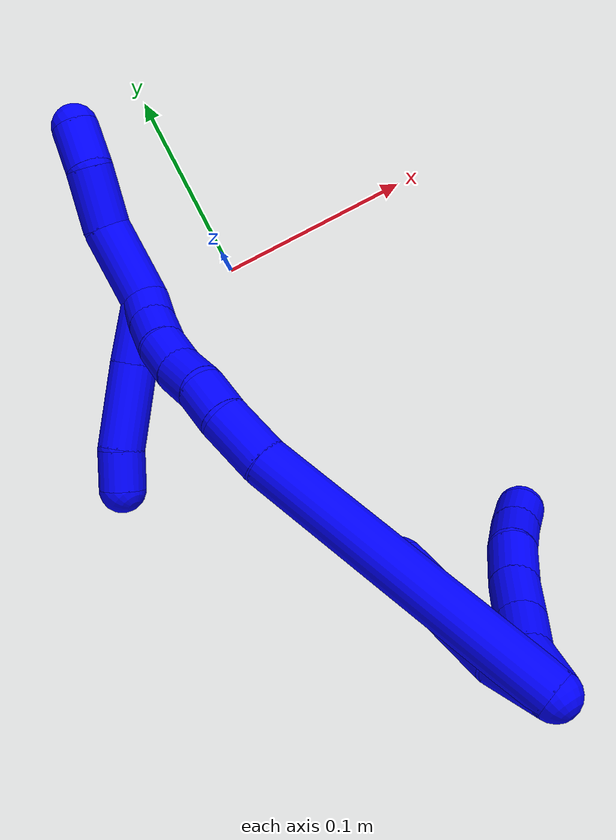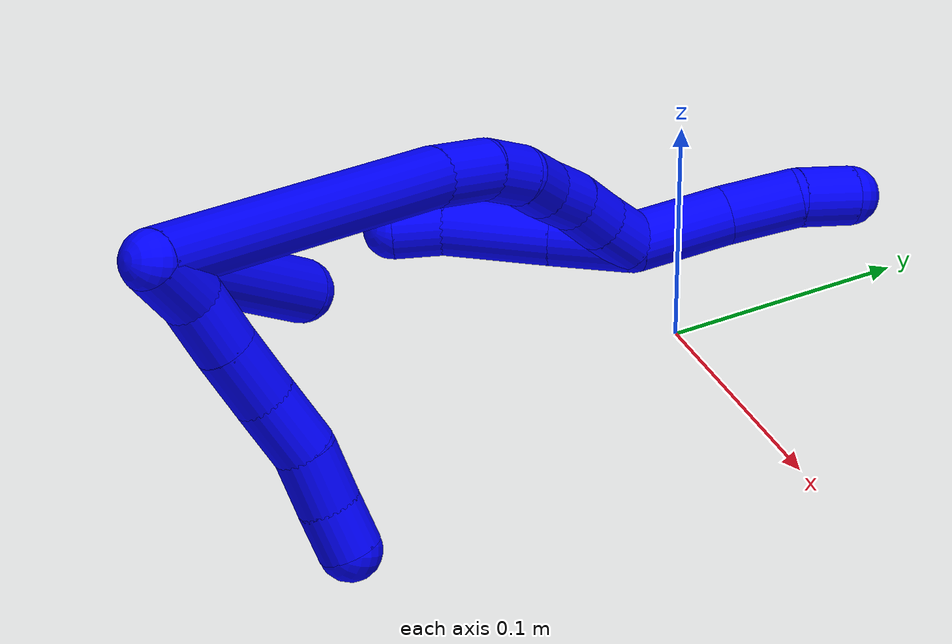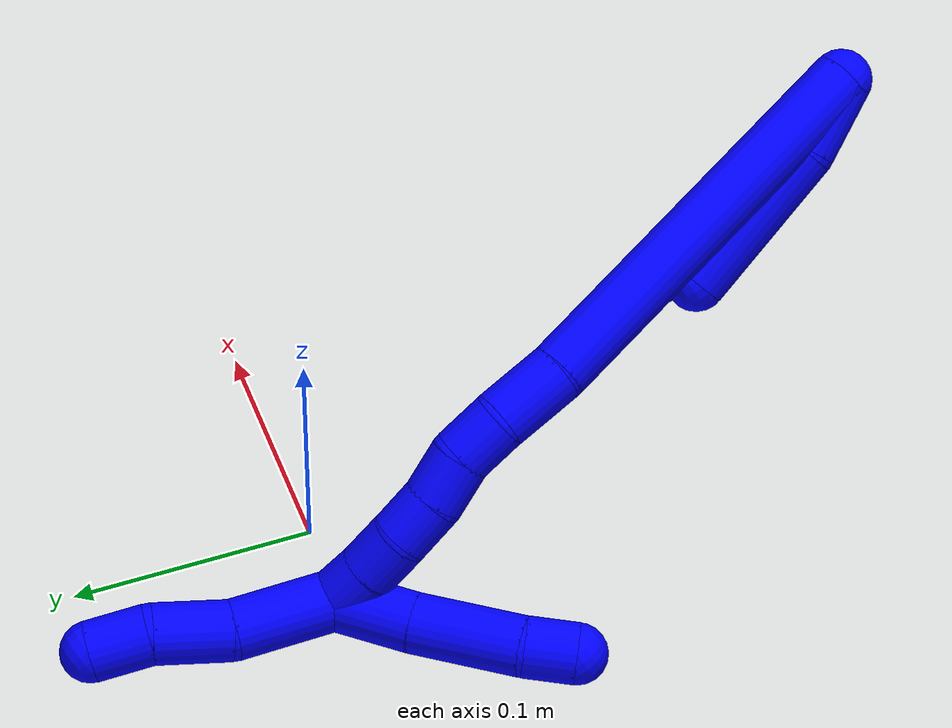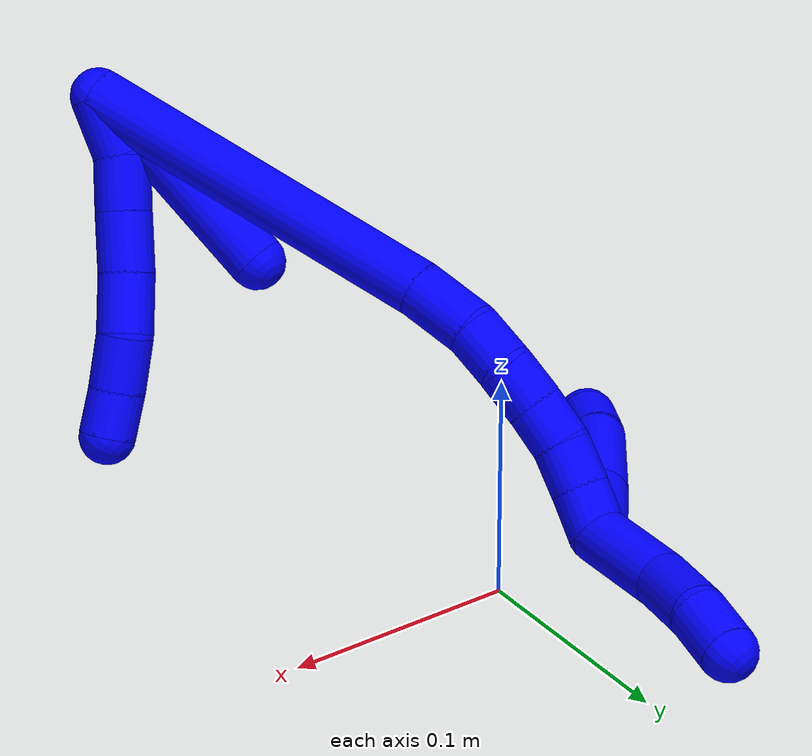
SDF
<sdf version="1.7">
 <world name="default">
  <model name="1">
   <static>0</static>
   <link name="1">
    <collision name="collision-cylinder-e_1_2_8">
     <pose>0.006401 -0.003817 -0.011486 2.82076 0.486462 1.98595</pose>
     <geometry><cylinder><radius>0.0125</radius><length>0.027385</length></cylinder></geometry>
     <surface>
      <friction><ode><mu>1.16</mu><mu2>1.16</mu2><slip1>0</slip1><slip2>0</slip2></ode></friction>
      <contact><ode><kp>1e+06</kp><kd>1</kd><max_vel>0</max_vel><min_depth>0.001</min_depth></ode></contact>
     </surface>
    </collision>
    <visual name="visual-cylinder-e_1_2_8">
     <pose>0.006401 -0.003817 -0.011486 2.82076 0.486462 1.98595</pose>
     <geometry><cylinder><radius>0.0125</radius><length>0.027385</length></cylinder></geometry>
     <material><ambient>0 0 1 1</ambient></material>
    </visual>
    <collision name="collision-cylinder-e_2_8_9">
     <pose>0.021626 -0.009128 -0.031157 2.96105 0.814789 2.72807</pose>
     <geometry><cylinder><radius>0.0125</radius><length>0.024253</length></cylinder></geometry>
     <surface>
      <friction><ode><mu>1.16</mu><mu2>1.16</mu2><slip1>0</slip1><slip2>0</slip2></ode></friction>
      <contact><ode><kp>1e+06</kp><kd>1</kd><max_vel>0</max_vel><min_depth>0.001</min_depth></ode></contact>
     </surface>
    </collision>
    <visual name="visual-cylinder-e_2_8_9">
     <pose>0.021626 -0.009128 -0.031157 2.96105 0.814789 2.72807</pose>
     <geometry><cylinder><radius>0.0125</radius><length>0.024253</length></cylinder></geometry>
     <material><ambient>0 0 1 1</ambient></material>
    </visual>
    <collision name="collision-cylinder-e_3_9_10">
     <pose>0.040015 -0.012068 -0.048737 2.9889 0.788498 2.77793</pose>
     <geometry><cylinder><radius>0.0125</radius><length>0.026974</length></cylinder></geometry>
     <surface>
      <friction><ode><mu>1.16</mu><mu2>1.16</mu2><slip1>0</slip1><slip2>0</slip2></ode></friction>
      <contact><ode><kp>1e+06</kp><kd>1</kd><max_vel>0</max_vel><min_depth>0.001</min_depth></ode></contact>
     </surface>
    </collision>
    <visual name="visual-cylinder-e_3_9_10">
     <pose>0.040015 -0.012068 -0.048737 2.9889 0.788498 2.77793</pose>
     <geometry><cylinder><radius>0.0125</radius><length>0.026974</length></cylinder></geometry>
     <material><ambient>0 0 1 1</ambient></material>
    </visual>
    <collision name="collision-cylinder-e_4_10_11">
     <pose>0.059469 -0.013922 -0.067099 3.09611 0.833801 3.03897</pose>
     <geometry><cylinder><radius>0.0125</radius><length>0.026707</length></cylinder></geometry>
     <surface>
      <friction><ode><mu>1.16</mu><mu2>1.16</mu2><slip1>0</slip1><slip2>0</slip2></ode></friction>
      <contact><ode><kp>1e+06</kp><kd>1</kd><max_vel>0</max_vel><min_depth>0.001</min_depth></ode></contact>
     </surface>
    </collision>
    <visual name="visual-cylinder-e_4_10_11">
     <pose>0.059469 -0.013922 -0.067099 3.09611 0.833801 3.03897</pose>
     <geometry><cylinder><radius>0.0125</radius><length>0.026707</length></cylinder></geometry>
     <material><ambient>0 0 1 1</ambient></material>
    </visual>
    <collision name="collision-cylinder-e_5_11_12">
     <pose>0.079686 -0.015956 -0.082257 2.88482 1.01583 2.6858</pose>
     <geometry><cylinder><radius>0.0125</radius><length>0.024305</length></cylinder></geometry>
     <surface>
      <friction><ode><mu>1.16</mu><mu2>1.16</mu2><slip1>0</slip1><slip2>0</slip2></ode></friction>
      <contact><ode><kp>1e+06</kp><kd>1</kd><max_vel>0</max_vel><min_depth>0.001</min_depth></ode></contact>
     </surface>
    </collision>
    <visual name="visual-cylinder-e_5_11_12">
     <pose>0.079686 -0.015956 -0.082257 2.88482 1.01583 2.6858</pose>
     <geometry><cylinder><radius>0.0125</radius><length>0.024305</length></cylinder></geometry>
     <material><ambient>0 0 1 1</ambient></material>
    </visual>
    <collision name="collision-cylinder-e_6_12_6">
     <pose>0.098894 -0.018218 -0.093406 3.01402 1.05827 2.92399</pose>
     <geometry><cylinder><radius>0.0125</radius><length>0.020375</length></cylinder></geometry>
     <surface>
      <friction><ode><mu>1.16</mu><mu2>1.16</mu2><slip1>0</slip1><slip2>0</slip2></ode></friction>
      <contact><ode><kp>1e+06</kp><kd>1</kd><max_vel>0</max_vel><min_depth>0.001</min_depth></ode></contact>
     </surface>
    </collision>
    <visual name="visual-cylinder-e_6_12_6">
     <pose>0.098894 -0.018218 -0.093406 3.01402 1.05827 2.92399</pose>
     <geometry><cylinder><radius>0.0125</radius><length>0.020375</length></cylinder></geometry>
     <material><ambient>0 0 1 1</ambient></material>
    </visual>
    <collision name="collision-cylinder-e_1_2_13">
     <pose>0.000329 -0.006938 -0.014336 2.69086 0.020668 0.090092</pose>
     <geometry><cylinder><radius>0.0125</radius><length>0.031861</length></cylinder></geometry>
     <surface>
      <friction><ode><mu>1.16</mu><mu2>1.16</mu2><slip1>0</slip1><slip2>0</slip2></ode></friction>
      <contact><ode><kp>1e+06</kp><kd>1</kd><max_vel>0</max_vel><min_depth>0.001</min_depth></ode></contact>
     </surface>
    </collision>
    <visual name="visual-cylinder-e_1_2_13">
     <pose>0.000329 -0.006938 -0.014336 2.69086 0.020668 0.090092</pose>
     <geometry><cylinder><radius>0.0125</radius><length>0.031861</length></cylinder></geometry>
     <material><ambient>0 0 1 1</ambient></material>
    </visual>
    <collision name="collision-cylinder-e_2_13_5">
     <pose>0.004341 -0.021953 -0.061566 2.90081 0.10831 0.842511</pose>
     <geometry><cylinder><radius>0.0125</radius><length>0.068139</length></cylinder></geometry>
     <surface>
      <friction><ode><mu>1.16</mu><mu2>1.16</mu2><slip1>0</slip1><slip2>0</slip2></ode></friction>
      <contact><ode><kp>1e+06</kp><kd>1</kd><max_vel>0</max_vel><min_depth>0.001</min_depth></ode></contact>
     </surface>
    </collision>
    <visual name="visual-cylinder-e_2_13_5">
     <pose>0.004341 -0.021953 -0.061566 2.90081 0.10831 0.842511</pose>
     <geometry><cylinder><radius>0.0125</radius><length>0.068139</length></cylinder></geometry>
     <material><ambient>0 0 1 1</ambient></material>
    </visual>
    <collision name="collision-cylinder-e_1_2_14">
     <pose>-0.01766 -0.013155 -0.081081 2.98074 -0.21177 -1.84396</pose>
     <geometry><cylinder><radius>0.0125</radius><length>0.168036</length></cylinder></geometry>
     <surface>
      <friction><ode><mu>1.16</mu><mu2>1.16</mu2><slip1>0</slip1><slip2>0</slip2></ode></friction>
      <contact><ode><kp>1e+06</kp><kd>1</kd><max_vel>0</max_vel><min_depth>0.001</min_depth></ode></contact>
     </surface>
    </collision>
    <visual name="visual-cylinder-e_1_2_14">
     <pose>-0.01766 -0.013155 -0.081081 2.98074 -0.21177 -1.84396</pose>
     <geometry><cylinder><radius>0.0125</radius><length>0.168036</length></cylinder></geometry>
     <material><ambient>0 0 1 1</ambient></material>
    </visual>
    <collision name="collision-cylinder-e_2_14_15">
     <pose>-0.037207 -0.027156 -0.177069 3.08499 -0.125726 -2.29638</pose>
     <geometry><cylinder><radius>0.0125</radius><length>0.0301</length></cylinder></geometry>
     <surface>
      <friction><ode><mu>1.16</mu><mu2>1.16</mu2><slip1>0</slip1><slip2>0</slip2></ode></friction>
      <contact><ode><kp>1e+06</kp><kd>1</kd><max_vel>0</max_vel><min_depth>0.001</min_depth></ode></contact>
     </surface>
    </collision>
    <visual name="visual-cylinder-e_2_14_15">
     <pose>-0.037207 -0.027156 -0.177069 3.08499 -0.125726 -2.29638</pose>
     <geometry><cylinder><radius>0.0125</radius><length>0.0301</length></cylinder></geometry>
     <material><ambient>0 0 1 1</ambient></material>
    </visual>
    <collision name="collision-cylinder-e_3_15_16">
     <pose>-0.038079 -0.029164 -0.202348 3.02982 0.096962 1.42888</pose>
     <geometry><cylinder><radius>0.0125</radius><length>0.020971</length></cylinder></geometry>
     <surface>
      <friction><ode><mu>1.16</mu><mu2>1.16</mu2><slip1>0</slip1><slip2>0</slip2></ode></friction>
      <contact><ode><kp>1e+06</kp><kd>1</kd><max_vel>0</max_vel><min_depth>0.001</min_depth></ode></contact>
     </surface>
    </collision>
    <visual name="visual-cylinder-e_3_15_16">
     <pose>-0.038079 -0.029164 -0.202348 3.02982 0.096962 1.42888</pose>
     <geometry><cylinder><radius>0.0125</radius><length>0.020971</length></cylinder></geometry>
     <material><ambient>0 0 1 1</ambient></material>
    </visual>
    <collision name="collision-cylinder-e_4_16_17">
     <pose>-0.034979 -0.034067 -0.2222 2.76599 0.201779 0.978916</pose>
     <geometry><cylinder><radius>0.0125</radius><length>0.020804</length></cylinder></geometry>
     <surface>
      <friction><ode><mu>1.16</mu><mu2>1.16</mu2><slip1>0</slip1><slip2>0</slip2></ode></friction>
      <contact><ode><kp>1e+06</kp><kd>1</kd><max_vel>0</max_vel><min_depth>0.001</min_depth></ode></contact>
     </surface>
    </collision>
    <visual name="visual-cylinder-e_4_16_17">
     <pose>-0.034979 -0.034067 -0.2222 2.76599 0.201779 0.978916</pose>
     <geometry><cylinder><radius>0.0125</radius><length>0.020804</length></cylinder></geometry>
     <material><ambient>0 0 1 1</ambient></material>
    </visual>
    <collision name="collision-cylinder-e_5_17_18">
     <pose>-0.030638 -0.039689 -0.24126 2.94743 0.227166 1.72827</pose>
     <geometry><cylinder><radius>0.0125</radius><length>0.02004</length></cylinder></geometry>
     <surface>
      <friction><ode><mu>1.16</mu><mu2>1.16</mu2><slip1>0</slip1><slip2>0</slip2></ode></friction>
      <contact><ode><kp>1e+06</kp><kd>1</kd><max_vel>0</max_vel><min_depth>0.001</min_depth></ode></contact>
     </surface>
    </collision>
    <visual name="visual-cylinder-e_5_17_18">
     <pose>-0.030638 -0.039689 -0.24126 2.94743 0.227166 1.72827</pose>
     <geometry><cylinder><radius>0.0125</radius><length>0.02004</length></cylinder></geometry>
     <material><ambient>0 0 1 1</ambient></material>
    </visual>
    <collision name="collision-cylinder-e_6_18_19">
     <pose>-0.024282 -0.043114 -0.259847 2.97209 0.421593 2.38571</pose>
     <geometry><cylinder><radius>0.0125</radius><length>0.020031</length></cylinder></geometry>
     <surface>
      <friction><ode><mu>1.16</mu><mu2>1.16</mu2><slip1>0</slip1><slip2>0</slip2></ode></friction>
      <contact><ode><kp>1e+06</kp><kd>1</kd><max_vel>0</max_vel><min_depth>0.001</min_depth></ode></contact>
     </surface>
    </collision>
    <visual name="visual-cylinder-e_6_18_19">
     <pose>-0.024282 -0.043114 -0.259847 2.97209 0.421593 2.38571</pose>
     <geometry><cylinder><radius>0.0125</radius><length>0.020031</length></cylinder></geometry>
     <material><ambient>0 0 1 1</ambient></material>
    </visual>
    <collision name="collision-cylinder-e_7_19_1">
     <pose>-0.015992 -0.045414 -0.27791 3.05804 0.43222 2.76532</pose>
     <geometry><cylinder><radius>0.0125</radius><length>0.020016</length></cylinder></geometry>
     <surface>
      <friction><ode><mu>1.16</mu><mu2>1.16</mu2><slip1>0</slip1><slip2>0</slip2></ode></friction>
      <contact><ode><kp>1e+06</kp><kd>1</kd><max_vel>0</max_vel><min_depth>0.001</min_depth></ode></contact>
     </surface>
    </collision>
    <visual name="visual-cylinder-e_7_19_1">
     <pose>-0.015992 -0.045414 -0.27791 3.05804 0.43222 2.76532</pose>
     <geometry><cylinder><radius>0.0125</radius><length>0.020016</length></cylinder></geometry>
     <material><ambient>0 0 1 1</ambient></material>
    </visual>
    <collision name="collision-cylinder-e_1_1_20">
     <pose>-0.014886 -0.059277 -0.276838 0.912817 -0.184281 -0.090674</pose>
     <geometry><cylinder><radius>0.0125</radius><length>0.033695</length></cylinder></geometry>
     <surface>
      <friction><ode><mu>1.16</mu><mu2>1.16</mu2><slip1>0</slip1><slip2>0</slip2></ode></friction>
      <contact><ode><kp>1e+06</kp><kd>1</kd><max_vel>0</max_vel><min_depth>0.001</min_depth></ode></contact>
     </surface>
    </collision>
    <visual name="visual-cylinder-e_1_1_20">
     <pose>-0.014886 -0.059277 -0.276838 0.912817 -0.184281 -0.090674</pose>
     <geometry><cylinder><radius>0.0125</radius><length>0.033695</length></cylinder></geometry>
     <material><ambient>0 0 1 1</ambient></material>
    </visual>
    <collision name="collision-cylinder-e_2_20_21">
     <pose>-0.022323 -0.088946 -0.251975 0.843772 -0.193711 -0.087162</pose>
     <geometry><cylinder><radius>0.0125</radius><length>0.045186</length></cylinder></geometry>
     <surface>
      <friction><ode><mu>1.16</mu><mu2>1.16</mu2><slip1>0</slip1><slip2>0</slip2></ode></friction>
      <contact><ode><kp>1e+06</kp><kd>1</kd><max_vel>0</max_vel><min_depth>0.001</min_depth></ode></contact>
     </surface>
    </collision>
    <visual name="visual-cylinder-e_2_20_21">
     <pose>-0.022323 -0.088946 -0.251975 0.843772 -0.193711 -0.087162</pose>
     <geometry><cylinder><radius>0.0125</radius><length>0.045186</length></cylinder></geometry>
     <material><ambient>0 0 1 1</ambient></material>
    </visual>
    <collision name="collision-cylinder-e_3_21_4">
     <pose>-0.026817 -0.112854 -0.229652 0.768985 -0.013729 -0.005555</pose>
     <geometry><cylinder><radius>0.0125</radius><length>0.021119</length></cylinder></geometry>
     <surface>
      <friction><ode><mu>1.16</mu><mu2>1.16</mu2><slip1>0</slip1><slip2>0</slip2></ode></friction>
      <contact><ode><kp>1e+06</kp><kd>1</kd><max_vel>0</max_vel><min_depth>0.001</min_depth></ode></contact>
     </surface>
    </collision>
    <visual name="visual-cylinder-e_3_21_4">
     <pose>-0.026817 -0.112854 -0.229652 0.768985 -0.013729 -0.005555</pose>
     <geometry><cylinder><radius>0.0125</radius><length>0.021119</length></cylinder></geometry>
     <material><ambient>0 0 1 1</ambient></material>
    </visual>
    <collision name="collision-cylinder-e_1_1_22">
     <pose>-0.016473 -0.038896 -0.306718 -2.78863 -0.218502 1.10283</pose>
     <geometry><cylinder><radius>0.0125</radius><length>0.043123</length></cylinder></geometry>
     <surface>
      <friction><ode><mu>1.16</mu><mu2>1.16</mu2><slip1>0</slip1><slip2>0</slip2></ode></friction>
      <contact><ode><kp>1e+06</kp><kd>1</kd><max_vel>0</max_vel><min_depth>0.001</min_depth></ode></contact>
     </surface>
    </collision>
    <visual name="visual-cylinder-e_1_1_22">
     <pose>-0.016473 -0.038896 -0.306718 -2.78863 -0.218502 1.10283</pose>
     <geometry><cylinder><radius>0.0125</radius><length>0.043123</length></cylinder></geometry>
     <material><ambient>0 0 1 1</ambient></material>
    </visual>
    <collision name="collision-cylinder-e_2_22_23">
     <pose>-0.023806 -0.022644 -0.33958 -2.54125 -0.16584 0.524648</pose>
     <geometry><cylinder><radius>0.0125</radius><length>0.032222</length></cylinder></geometry>
     <surface>
      <friction><ode><mu>1.16</mu><mu2>1.16</mu2><slip1>0</slip1><slip2>0</slip2></ode></friction>
      <contact><ode><kp>1e+06</kp><kd>1</kd><max_vel>0</max_vel><min_depth>0.001</min_depth></ode></contact>
     </surface>
    </collision>
    <visual name="visual-cylinder-e_2_22_23">
     <pose>-0.023806 -0.022644 -0.33958 -2.54125 -0.16584 0.524648</pose>
     <geometry><cylinder><radius>0.0125</radius><length>0.032222</length></cylinder></geometry>
     <material><ambient>0 0 1 1</ambient></material>
    </visual>
    <collision name="collision-cylinder-e_3_23_3">
     <pose>-0.026404 -0.009375 -0.364248 -2.786 0.004996 -0.027804</pose>
     <geometry><cylinder><radius>0.0125</radius><length>0.024655</length></cylinder></geometry>
     <surface>
      <friction><ode><mu>1.16</mu><mu2>1.16</mu2><slip1>0</slip1><slip2>0</slip2></ode></friction>
      <contact><ode><kp>1e+06</kp><kd>1</kd><max_vel>0</max_vel><min_depth>0.001</min_depth></ode></contact>
     </surface>
    </collision>
    <visual name="visual-cylinder-e_3_23_3">
     <pose>-0.026404 -0.009375 -0.364248 -2.786 0.004996 -0.027804</pose>
     <geometry><cylinder><radius>0.0125</radius><length>0.024655</length></cylinder></geometry>
     <material><ambient>0 0 1 1</ambient></material>
    </visual>
    <collision name="collision-sphere-3">
     <pose>-0.026343 -0.005084 -0.375804 0 -0 0</pose>
     <geometry><sphere><radius>0.0125</radius></sphere></geometry>
     <surface>
      <friction><ode><mu>1.16</mu><mu2>1.16</mu2><slip1>0</slip1><slip2>0</slip2></ode></friction>
      <contact><ode><kp>1e+06</kp><kd>1</kd><max_vel>0</max_vel><min_depth>0.001</min_depth></ode></contact>
     </surface>
    </collision>
    <visual name="visual-sphere-3">
     <pose>-0.026343 -0.005084 -0.375804 0 -0 0</pose>
     <geometry><sphere><radius>0.0125</radius></sphere></geometry>
     <material><ambient>0 0 1 1</ambient></material>
    </visual>
    <collision name="collision-sphere-23">
     <pose>-0.026466 -0.013667 -0.352692 0 -0 0</pose>
     <geometry><sphere><radius>0.0125</radius></sphere></geometry>
     <surface>
      <friction><ode><mu>1.16</mu><mu2>1.16</mu2><slip1>0</slip1><slip2>0</slip2></ode></friction>
      <contact><ode><kp>1e+06</kp><kd>1</kd><max_vel>0</max_vel><min_depth>0.001</min_depth></ode></contact>
     </surface>
    </collision>
    <visual name="visual-sphere-23">
     <pose>-0.026466 -0.013667 -0.352692 0 -0 0</pose>
     <geometry><sphere><radius>0.0125</radius></sphere></geometry>
     <material><ambient>0 0 1 1</ambient></material>
    </visual>
    <collision name="collision-sphere-22">
     <pose>-0.021147 -0.03162 -0.326469 0 -0 0</pose>
     <geometry><sphere><radius>0.0125</radius></sphere></geometry>
     <surface>
      <friction><ode><mu>1.16</mu><mu2>1.16</mu2><slip1>0</slip1><slip2>0</slip2></ode></friction>
      <contact><ode><kp>1e+06</kp><kd>1</kd><max_vel>0</max_vel><min_depth>0.001</min_depth></ode></contact>
     </surface>
    </collision>
    <visual name="visual-sphere-22">
     <pose>-0.021147 -0.03162 -0.326469 0 -0 0</pose>
     <geometry><sphere><radius>0.0125</radius></sphere></geometry>
     <material><ambient>0 0 1 1</ambient></material>
    </visual>
    <collision name="collision-sphere-4">
     <pose>-0.026962 -0.120196 -0.222064 0 -0 0</pose>
     <geometry><sphere><radius>0.0125</radius></sphere></geometry>
     <surface>
      <friction><ode><mu>1.16</mu><mu2>1.16</mu2><slip1>0</slip1><slip2>0</slip2></ode></friction>
      <contact><ode><kp>1e+06</kp><kd>1</kd><max_vel>0</max_vel><min_depth>0.001</min_depth></ode></contact>
     </surface>
    </collision>
    <visual name="visual-sphere-4">
     <pose>-0.026962 -0.120196 -0.222064 0 -0 0</pose>
     <geometry><sphere><radius>0.0125</radius></sphere></geometry>
     <material><ambient>0 0 1 1</ambient></material>
    </visual>
    <collision name="collision-sphere-21">
     <pose>-0.026672 -0.105511 -0.237239 0 -0 0</pose>
     <geometry><sphere><radius>0.0125</radius></sphere></geometry>
     <surface>
      <friction><ode><mu>1.16</mu><mu2>1.16</mu2><slip1>0</slip1><slip2>0</slip2></ode></friction>
      <contact><ode><kp>1e+06</kp><kd>1</kd><max_vel>0</max_vel><min_depth>0.001</min_depth></ode></contact>
     </surface>
    </collision>
    <visual name="visual-sphere-21">
     <pose>-0.026672 -0.105511 -0.237239 0 -0 0</pose>
     <geometry><sphere><radius>0.0125</radius></sphere></geometry>
     <material><ambient>0 0 1 1</ambient></material>
    </visual>
    <collision name="collision-sphere-20">
     <pose>-0.017974 -0.072382 -0.26671 0 -0 0</pose>
     <geometry><sphere><radius>0.0125</radius></sphere></geometry>
     <surface>
      <friction><ode><mu>1.16</mu><mu2>1.16</mu2><slip1>0</slip1><slip2>0</slip2></ode></friction>
      <contact><ode><kp>1e+06</kp><kd>1</kd><max_vel>0</max_vel><min_depth>0.001</min_depth></ode></contact>
     </surface>
    </collision>
    <visual name="visual-sphere-20">
     <pose>-0.017974 -0.072382 -0.26671 0 -0 0</pose>
     <geometry><sphere><radius>0.0125</radius></sphere></geometry>
     <material><ambient>0 0 1 1</ambient></material>
    </visual>
    <collision name="collision-sphere-12">
     <pose>0.090015 -0.017582 -0.088451 0 -0 0</pose>
     <geometry><sphere><radius>0.0125</radius></sphere></geometry>
     <surface>
      <friction><ode><mu>1.16</mu><mu2>1.16</mu2><slip1>0</slip1><slip2>0</slip2></ode></friction>
      <contact><ode><kp>1e+06</kp><kd>1</kd><max_vel>0</max_vel><min_depth>0.001</min_depth></ode></contact>
     </surface>
    </collision>
    <visual name="visual-sphere-12">
     <pose>0.090015 -0.017582 -0.088451 0 -0 0</pose>
     <geometry><sphere><radius>0.0125</radius></sphere></geometry>
     <material><ambient>0 0 1 1</ambient></material>
    </visual>
    <collision name="collision-sphere-11">
     <pose>0.069358 -0.01433 -0.076064 0 -0 0</pose>
     <geometry><sphere><radius>0.0125</radius></sphere></geometry>
     <surface>
      <friction><ode><mu>1.16</mu><mu2>1.16</mu2><slip1>0</slip1><slip2>0</slip2></ode></friction>
      <contact><ode><kp>1e+06</kp><kd>1</kd><max_vel>0</max_vel><min_depth>0.001</min_depth></ode></contact>
     </surface>
    </collision>
    <visual name="visual-sphere-11">
     <pose>0.069358 -0.01433 -0.076064 0 -0 0</pose>
     <geometry><sphere><radius>0.0125</radius></sphere></geometry>
     <material><ambient>0 0 1 1</ambient></material>
    </visual>
    <collision name="collision-sphere-10">
     <pose>0.049581 -0.013514 -0.058134 0 -0 0</pose>
     <geometry><sphere><radius>0.0125</radius></sphere></geometry>
     <surface>
      <friction><ode><mu>1.16</mu><mu2>1.16</mu2><slip1>0</slip1><slip2>0</slip2></ode></friction>
      <contact><ode><kp>1e+06</kp><kd>1</kd><max_vel>0</max_vel><min_depth>0.001</min_depth></ode></contact>
     </surface>
    </collision>
    <visual name="visual-sphere-10">
     <pose>0.049581 -0.013514 -0.058134 0 -0 0</pose>
     <geometry><sphere><radius>0.0125</radius></sphere></geometry>
     <material><ambient>0 0 1 1</ambient></material>
    </visual>
    <collision name="collision-sphere-9">
     <pose>0.030449 -0.010622 -0.039341 0 -0 0</pose>
     <geometry><sphere><radius>0.0125</radius></sphere></geometry>
     <surface>
      <friction><ode><mu>1.16</mu><mu2>1.16</mu2><slip1>0</slip1><slip2>0</slip2></ode></friction>
      <contact><ode><kp>1e+06</kp><kd>1</kd><max_vel>0</max_vel><min_depth>0.001</min_depth></ode></contact>
     </surface>
    </collision>
    <visual name="visual-sphere-9">
     <pose>0.030449 -0.010622 -0.039341 0 -0 0</pose>
     <geometry><sphere><radius>0.0125</radius></sphere></geometry>
     <material><ambient>0 0 1 1</ambient></material>
    </visual>
    <collision name="collision-sphere-2">
     <geometry><sphere><radius>0.0125</radius></sphere></geometry>
     <surface>
      <friction><ode><mu>1.16</mu><mu2>1.16</mu2><slip1>0</slip1><slip2>0</slip2></ode></friction>
      <contact><ode><kp>1e+06</kp><kd>1</kd><max_vel>0</max_vel><min_depth>0.001</min_depth></ode></contact>
     </surface>
    </collision>
    <visual name="visual-sphere-2">
     <geometry><sphere><radius>0.0125</radius></sphere></geometry>
     <material><ambient>0 0 1 1</ambient></material>
    </visual>
    <collision name="collision-sphere-19">
     <pose>-0.020184 -0.044656 -0.268854 0 -0 0</pose>
     <geometry><sphere><radius>0.0125</radius></sphere></geometry>
     <surface>
      <friction><ode><mu>1.16</mu><mu2>1.16</mu2><slip1>0</slip1><slip2>0</slip2></ode></friction>
      <contact><ode><kp>1e+06</kp><kd>1</kd><max_vel>0</max_vel><min_depth>0.001</min_depth></ode></contact>
     </surface>
    </collision>
    <visual name="visual-sphere-19">
     <pose>-0.020184 -0.044656 -0.268854 0 -0 0</pose>
     <geometry><sphere><radius>0.0125</radius></sphere></geometry>
     <material><ambient>0 0 1 1</ambient></material>
    </visual>
    <collision name="collision-sphere-8">
     <pose>0.012802 -0.007634 -0.022973 0 -0 0</pose>
     <geometry><sphere><radius>0.0125</radius></sphere></geometry>
     <surface>
      <friction><ode><mu>1.16</mu><mu2>1.16</mu2><slip1>0</slip1><slip2>0</slip2></ode></friction>
      <contact><ode><kp>1e+06</kp><kd>1</kd><max_vel>0</max_vel><min_depth>0.001</min_depth></ode></contact>
     </surface>
    </collision>
    <visual name="visual-sphere-8">
     <pose>0.012802 -0.007634 -0.022973 0 -0 0</pose>
     <geometry><sphere><radius>0.0125</radius></sphere></geometry>
     <material><ambient>0 0 1 1</ambient></material>
    </visual>
    <collision name="collision-sphere-6">
     <pose>0.107773 -0.018853 -0.098361 0 -0 0</pose>
     <geometry><sphere><radius>0.0125</radius></sphere></geometry>
     <surface>
      <friction><ode><mu>1.16</mu><mu2>1.16</mu2><slip1>0</slip1><slip2>0</slip2></ode></friction>
      <contact><ode><kp>1e+06</kp><kd>1</kd><max_vel>0</max_vel><min_depth>0.001</min_depth></ode></contact>
     </surface>
    </collision>
    <visual name="visual-sphere-6">
     <pose>0.107773 -0.018853 -0.098361 0 -0 0</pose>
     <geometry><sphere><radius>0.0125</radius></sphere></geometry>
     <material><ambient>0 0 1 1</ambient></material>
    </visual>
    <collision name="collision-sphere-13">
     <pose>0.000658 -0.013877 -0.028673 0 -0 0</pose>
     <geometry><sphere><radius>0.0125</radius></sphere></geometry>
     <surface>
      <friction><ode><mu>1.16</mu><mu2>1.16</mu2><slip1>0</slip1><slip2>0</slip2></ode></friction>
      <contact><ode><kp>1e+06</kp><kd>1</kd><max_vel>0</max_vel><min_depth>0.001</min_depth></ode></contact>
     </surface>
    </collision>
    <visual name="visual-sphere-13">
     <pose>0.000658 -0.013877 -0.028673 0 -0 0</pose>
     <geometry><sphere><radius>0.0125</radius></sphere></geometry>
     <material><ambient>0 0 1 1</ambient></material>
    </visual>
    <collision name="collision-sphere-5">
     <pose>0.008024 -0.03003 -0.094458 0 -0 0</pose>
     <geometry><sphere><radius>0.0125</radius></sphere></geometry>
     <surface>
      <friction><ode><mu>1.16</mu><mu2>1.16</mu2><slip1>0</slip1><slip2>0</slip2></ode></friction>
      <contact><ode><kp>1e+06</kp><kd>1</kd><max_vel>0</max_vel><min_depth>0.001</min_depth></ode></contact>
     </surface>
    </collision>
    <visual name="visual-sphere-5">
     <pose>0.008024 -0.03003 -0.094458 0 -0 0</pose>
     <geometry><sphere><radius>0.0125</radius></sphere></geometry>
     <material><ambient>0 0 1 1</ambient></material>
    </visual>
    <collision name="collision-sphere-14">
     <pose>-0.03532 -0.026311 -0.162162 0 -0 0</pose>
     <geometry><sphere><radius>0.0125</radius></sphere></geometry>
     <surface>
      <friction><ode><mu>1.16</mu><mu2>1.16</mu2><slip1>0</slip1><slip2>0</slip2></ode></friction>
      <contact><ode><kp>1e+06</kp><kd>1</kd><max_vel>0</max_vel><min_depth>0.001</min_depth></ode></contact>
     </surface>
    </collision>
    <visual name="visual-sphere-14">
     <pose>-0.03532 -0.026311 -0.162162 0 -0 0</pose>
     <geometry><sphere><radius>0.0125</radius></sphere></geometry>
     <material><ambient>0 0 1 1</ambient></material>
    </visual>
    <collision name="collision-sphere-15">
     <pose>-0.039094 -0.028 -0.191977 0 -0 0</pose>
     <geometry><sphere><radius>0.0125</radius></sphere></geometry>
     <surface>
      <friction><ode><mu>1.16</mu><mu2>1.16</mu2><slip1>0</slip1><slip2>0</slip2></ode></friction>
      <contact><ode><kp>1e+06</kp><kd>1</kd><max_vel>0</max_vel><min_depth>0.001</min_depth></ode></contact>
     </surface>
    </collision>
    <visual name="visual-sphere-15">
     <pose>-0.039094 -0.028 -0.191977 0 -0 0</pose>
     <geometry><sphere><radius>0.0125</radius></sphere></geometry>
     <material><ambient>0 0 1 1</ambient></material>
    </visual>
    <collision name="collision-sphere-16">
     <pose>-0.037064 -0.030328 -0.212719 0 -0 0</pose>
     <geometry><sphere><radius>0.0125</radius></sphere></geometry>
     <surface>
      <friction><ode><mu>1.16</mu><mu2>1.16</mu2><slip1>0</slip1><slip2>0</slip2></ode></friction>
      <contact><ode><kp>1e+06</kp><kd>1</kd><max_vel>0</max_vel><min_depth>0.001</min_depth></ode></contact>
     </surface>
    </collision>
    <visual name="visual-sphere-16">
     <pose>-0.037064 -0.030328 -0.212719 0 -0 0</pose>
     <geometry><sphere><radius>0.0125</radius></sphere></geometry>
     <material><ambient>0 0 1 1</ambient></material>
    </visual>
    <collision name="collision-sphere-17">
     <pose>-0.032894 -0.037805 -0.231681 0 -0 0</pose>
     <geometry><sphere><radius>0.0125</radius></sphere></geometry>
     <surface>
      <friction><ode><mu>1.16</mu><mu2>1.16</mu2><slip1>0</slip1><slip2>0</slip2></ode></friction>
      <contact><ode><kp>1e+06</kp><kd>1</kd><max_vel>0</max_vel><min_depth>0.001</min_depth></ode></contact>
     </surface>
    </collision>
    <visual name="visual-sphere-17">
     <pose>-0.032894 -0.037805 -0.231681 0 -0 0</pose>
     <geometry><sphere><radius>0.0125</radius></sphere></geometry>
     <material><ambient>0 0 1 1</ambient></material>
    </visual>
    <collision name="collision-sphere-18">
     <pose>-0.028381 -0.041573 -0.250839 0 -0 0</pose>
     <geometry><sphere><radius>0.0125</radius></sphere></geometry>
     <surface>
      <friction><ode><mu>1.16</mu><mu2>1.16</mu2><slip1>0</slip1><slip2>0</slip2></ode></friction>
      <contact><ode><kp>1e+06</kp><kd>1</kd><max_vel>0</max_vel><min_depth>0.001</min_depth></ode></contact>
     </surface>
    </collision>
    <visual name="visual-sphere-18">
     <pose>-0.028381 -0.041573 -0.250839 0 -0 0</pose>
     <geometry><sphere><radius>0.0125</radius></sphere></geometry>
     <material><ambient>0 0 1 1</ambient></material>
    </visual>
    <collision name="collision-sphere-1">
     <pose>-0.011799 -0.046173 -0.286967 0 -0 0</pose>
     <geometry><sphere><radius>0.0125</radius></sphere></geometry>
     <surface>
      <friction><ode><mu>1.16</mu><mu2>1.16</mu2><slip1>0</slip1><slip2>0</slip2></ode></friction>
      <contact><ode><kp>1e+06</kp><kd>1</kd><max_vel>0</max_vel><min_depth>0.001</min_depth></ode></contact>
     </surface>
    </collision>
    <visual name="visual-sphere-1">
     <pose>-0.011799 -0.046173 -0.286967 0 -0 0</pose>
     <geometry><sphere><radius>0.0125</radius></sphere></geometry>
     <material><ambient>0 0 1 1</ambient></material>
    </visual>
    <inertial>
     <pose>-0.004818 -0.028605 -0.153156 0 -0 0</pose>
     <mass>0.75</mass>
     <inertia>
      <ixx>-0.000405</ixx>
      <ixy>0</ixy>
      <ixz>0</ixz>
      <iyy>-0.000234</iyy>
      <iyz>0</iyz>
      <izz>0.000116</izz>
     </inertia>
    </inertial>
   </link>
   <pose>0.039969 -0.241547 0.141198 0.932881 0.855567 -0.341959</pose>
  </model>
 </world>
</sdf>
